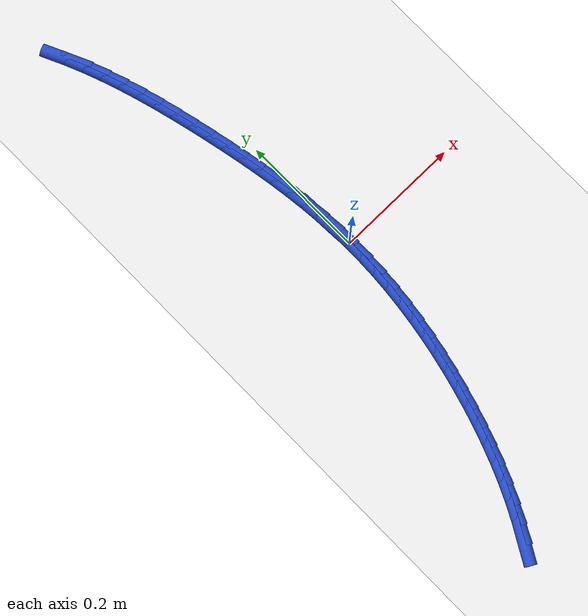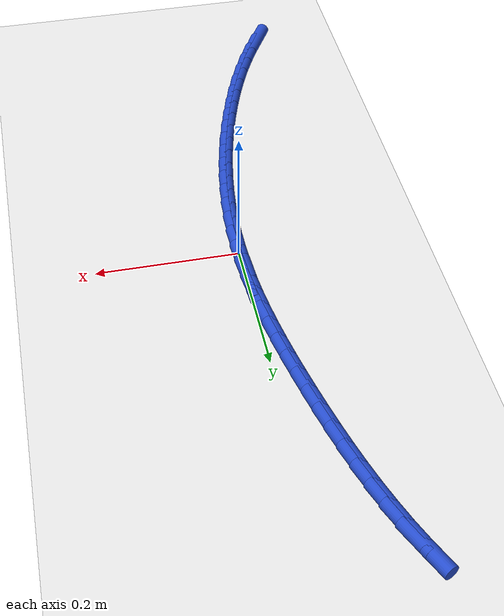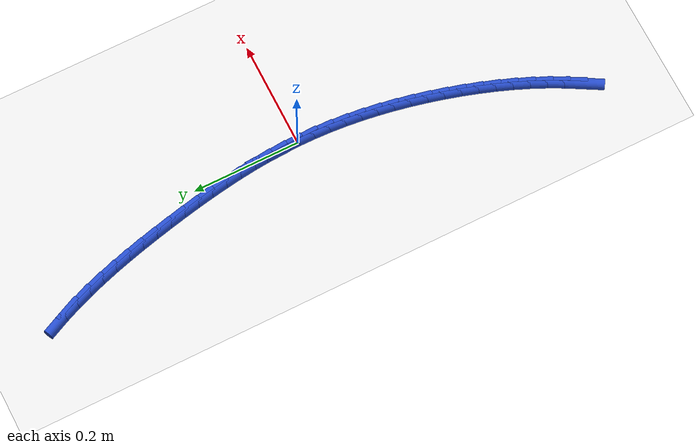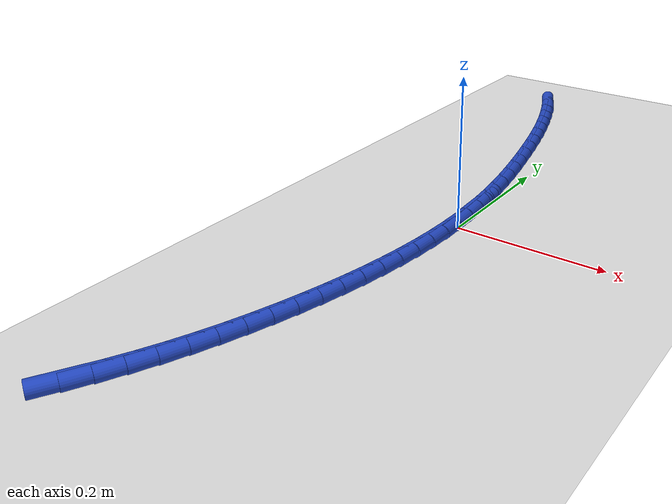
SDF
<sdf version="1.6">
 <world name="default">
  <model name="ground_plane">
   <static>1</static>
   <link name="link">
    <collision name="collision">
     <geometry><plane><normal>0 0 1</normal><size>100 100</size></plane></geometry>
     <surface><friction><ode><mu>100</mu><mu2>50</mu2></ode></friction></surface>
    </collision>
    <visual name="visual">
     <cast_shadows>0</cast_shadows>
     <geometry><plane><normal>0 0 1</normal><size>100 100</size></plane></geometry>
     <material>
      <script><uri>file://media/materials/scripts/gazebo.material</uri><name>Gazebo/WhiteGlow</name></script>
     </material>
    </visual>
   </link>
  </model>
  <model name="line">
   <link name="link_0">
    <pose>-6.071532165918825e-18 4.85722573273506e-17 0.01 0 1.57 -1.5422927367857937</pose>
    <collision name="collision">
     <geometry><cylinder><radius>0.01</radius><length>0.08</length></cylinder></geometry>
    </collision>
    <visual name="visual">
     <material>
      <script><name>Gazebo/Blue</name><uri>file://media/materials/scripts/gazebo.material</uri></script>
     </material>
     <geometry><cylinder><radius>0.01</radius><length>0.08</length></cylinder></geometry>
    </visual>
   </link>
   <link name="link_1">
    <pose>-0.0008500700730344115 0.029815186291741774 0.01 0 1.57 -1.5089899252679961</pose>
    <collision name="collision">
     <geometry><cylinder><radius>0.01</radius><length>0.08</length></cylinder></geometry>
    </collision>
    <visual name="visual">
     <material>
      <script><name>Gazebo/Blue</name><uri>file://media/materials/scripts/gazebo.material</uri></script>
     </material>
     <geometry><cylinder><radius>0.01</radius><length>0.08</length></cylinder></geometry>
    </visual>
   </link>
   <link name="link_2">
    <pose>-0.0026938253464960774 0.05960832900175632 0.01 0 1.57 -1.4784900606739158</pose>
    <collision name="collision">
     <geometry><cylinder><radius>0.01</radius><length>0.08</length></cylinder></geometry>
    </collision>
    <visual name="visual">
     <material>
      <script><name>Gazebo/Blue</name><uri>file://media/materials/scripts/gazebo.material</uri></script>
     </material>
     <geometry><cylinder><radius>0.01</radius><length>0.08</length></cylinder></geometry>
    </visual>
   </link>
   <link name="link_3">
    <pose>-0.0054497243864304315 0.08937951943180696 0.01 0 1.57 -1.4508179641924235</pose>
    <collision name="collision">
     <geometry><cylinder><radius>0.01</radius><length>0.08</length></cylinder></geometry>
    </collision>
    <visual name="visual">
     <material>
      <script><name>Gazebo/Blue</name><uri>file://media/materials/scripts/gazebo.material</uri></script>
     </material>
     <geometry><cylinder><radius>0.01</radius><length>0.08</length></cylinder></geometry>
    </visual>
   </link>
   <link name="link_4">
    <pose>-0.009036225758882886 0.11912884888365684 0.01 0 1.57 -1.425974173129406</pose>
    <collision name="collision">
     <geometry><cylinder><radius>0.01</radius><length>0.08</length></cylinder></geometry>
    </collision>
    <visual name="visual">
     <material>
      <script><name>Gazebo/Blue</name><uri>file://media/materials/scripts/gazebo.material</uri></script>
     </material>
     <geometry><cylinder><radius>0.01</radius><length>0.08</length></cylinder></geometry>
    </visual>
   </link>
   <link name="link_5">
    <pose>-0.013371788029898852 0.1488564086590691 0.01 0 1.57 -1.403941627276447</pose>
    <collision name="collision">
     <geometry><cylinder><radius>0.01</radius><length>0.08</length></cylinder></geometry>
    </collision>
    <visual name="visual">
     <material>
      <script><name>Gazebo/Blue</name><uri>file://media/materials/scripts/gazebo.material</uri></script>
     </material>
     <geometry><cylinder><radius>0.01</radius><length>0.08</length></cylinder></geometry>
    </visual>
   </link>
   <link name="link_6">
    <pose>-0.018374869765523758 0.17856229005980703 0.01 0 1.57 -1.3846916934895022</pose>
    <collision name="collision">
     <geometry><cylinder><radius>0.01</radius><length>0.08</length></cylinder></geometry>
    </collision>
    <visual name="visual">
     <material>
      <script><name>Gazebo/Blue</name><uri>file://media/materials/scripts/gazebo.material</uri></script>
     </material>
     <geometry><cylinder><radius>0.01</radius><length>0.08</length></cylinder></geometry>
    </visual>
   </link>
   <link name="link_7">
    <pose>-0.02396392953180301 0.2082465843876337 0.01 0 1.57 -1.3681893877690723</pose>
    <collision name="collision">
     <geometry><cylinder><radius>0.01</radius><length>0.08</length></cylinder></geometry>
    </collision>
    <visual name="visual">
     <material>
      <script><name>Gazebo/Blue</name><uri>file://media/materials/scripts/gazebo.material</uri></script>
     </material>
     <geometry><cylinder><radius>0.01</radius><length>0.08</length></cylinder></geometry>
    </visual>
   </link>
   <link name="link_8">
    <pose>-0.030057425894782025 0.23790938294431227 0.01 0 1.57 -1.354397757085434</pose>
    <collision name="collision">
     <geometry><cylinder><radius>0.01</radius><length>0.08</length></cylinder></geometry>
    </collision>
    <visual name="visual">
     <material>
      <script><name>Gazebo/Blue</name><uri>file://media/materials/scripts/gazebo.material</uri></script>
     </material>
     <geometry><cylinder><radius>0.01</radius><length>0.08</length></cylinder></geometry>
    </visual>
   </link>
   <link name="link_9">
    <pose>-0.036573817420506236 0.2675507770316061 0.01 0 1.57 -1.3425047791238347</pose>
    <collision name="collision">
     <geometry><cylinder><radius>0.01</radius><length>0.08</length></cylinder></geometry>
    </collision>
    <visual name="visual">
     <material>
      <script><name>Gazebo/Blue</name><uri>file://media/materials/scripts/gazebo.material</uri></script>
     </material>
     <geometry><cylinder><radius>0.01</radius><length>0.08</length></cylinder></geometry>
    </visual>
   </link>
   <link name="link_10">
    <pose>-0.04345385833874382 0.29716247840001847 0.01 0 1.57 -1.3285737604182255</pose>
    <collision name="collision">
     <geometry><cylinder><radius>0.01</radius><length>0.08</length></cylinder></geometry>
    </collision>
    <visual name="visual">
     <material>
      <script><name>Gazebo/Blue</name><uri>file://media/materials/scripts/gazebo.material</uri></script>
     </material>
     <geometry><cylinder><radius>0.01</radius><length>0.08</length></cylinder></geometry>
    </visual>
   </link>
   <link name="link_11">
    <pose>-0.050750341684509856 0.32669409039173974 0.01 0 1.57 -1.3113362095584067</pose>
    <collision name="collision">
     <geometry><cylinder><radius>0.01</radius><length>0.08</length></cylinder></geometry>
    </collision>
    <visual name="visual">
     <material>
      <script><name>Gazebo/Blue</name><uri>file://media/materials/scripts/gazebo.material</uri></script>
     </material>
     <geometry><cylinder><radius>0.01</radius><length>0.08</length></cylinder></geometry>
    </visual>
   </link>
   <link name="link_12">
    <pose>-0.058551177147625755 0.35608201818573537 0.01 0 1.57 -1.2907302031593344</pose>
    <collision name="collision">
     <geometry><cylinder><radius>0.01</radius><length>0.08</length></cylinder></geometry>
    </collision>
    <visual name="visual">
     <material>
      <script><name>Gazebo/Blue</name><uri>file://media/materials/scripts/gazebo.material</uri></script>
     </material>
     <geometry><cylinder><radius>0.01</radius><length>0.08</length></cylinder></geometry>
    </visual>
   </link>
   <link name="link_13">
    <pose>-0.06694428671944992 0.38526266233758893 0.01 0 1.57 -1.2666827574717787</pose>
    <collision name="collision">
     <geometry><cylinder><radius>0.01</radius><length>0.08</length></cylinder></geometry>
    </collision>
    <visual name="visual">
     <material>
      <script><name>Gazebo/Blue</name><uri>file://media/materials/scripts/gazebo.material</uri></script>
     </material>
     <geometry><cylinder><radius>0.01</radius><length>0.08</length></cylinder></geometry>
    </visual>
   </link>
   <link name="link_14">
    <pose>-0.0760175923913409 0.4141724234028846 0.01 0 1.57 -1.2391159954920428</pose>
    <collision name="collision">
     <geometry><cylinder><radius>0.01</radius><length>0.08</length></cylinder></geometry>
    </collision>
    <visual name="visual">
     <material>
      <script><name>Gazebo/Blue</name><uri>file://media/materials/scripts/gazebo.material</uri></script>
     </material>
     <geometry><cylinder><radius>0.01</radius><length>0.08</length></cylinder></geometry>
    </visual>
   </link>
   <link name="link_15">
    <pose>-0.0858590161546571 0.4427477019372059 0.01 0 1.57 -1.2079554633256253</pose>
    <collision name="collision">
     <geometry><cylinder><radius>0.01</radius><length>0.08</length></cylinder></geometry>
    </collision>
    <visual name="visual">
     <material>
      <script><name>Gazebo/Blue</name><uri>file://media/materials/scripts/gazebo.material</uri></script>
     </material>
     <geometry><cylinder><radius>0.01</radius><length>0.08</length></cylinder></geometry>
    </visual>
   </link>
   <link name="link_16">
    <pose>-0.09655648000075702 0.47092489849613706 0.01 0 1.57 -1.1731404388087883</pose>
    <collision name="collision">
     <geometry><cylinder><radius>0.01</radius><length>0.08</length></cylinder></geometry>
    </collision>
    <visual name="visual">
     <material>
      <script><name>Gazebo/Blue</name><uri>file://media/materials/scripts/gazebo.material</uri></script>
     </material>
     <geometry><cylinder><radius>0.01</radius><length>0.08</length></cylinder></geometry>
    </visual>
   </link>
   <link name="link_17">
    <pose>-0.10819790592099916 0.49864041363526146 0.01 0 1.57 -1.1346363552337206</pose>
    <collision name="collision">
     <geometry><cylinder><radius>0.01</radius><length>0.08</length></cylinder></geometry>
    </collision>
    <visual name="visual">
     <material>
      <script><name>Gazebo/Blue</name><uri>file://media/materials/scripts/gazebo.material</uri></script>
     </material>
     <geometry><cylinder><radius>0.01</radius><length>0.08</length></cylinder></geometry>
    </visual>
   </link>
   <link name="link_213">
    <pose>-0.12747563588377403 -0.4910410517550294 0.01 0 1.57 1.0550272581237121</pose>
    <collision name="collision">
     <geometry><cylinder><radius>0.01</radius><length>0.08</length></cylinder></geometry>
    </collision>
    <visual name="visual">
     <material>
      <script><name>Gazebo/Blue</name><uri>file://media/materials/scripts/gazebo.material</uri></script>
     </material>
     <geometry><cylinder><radius>0.01</radius><length>0.08</length></cylinder></geometry>
    </visual>
   </link>
   <link name="link_214">
    <pose>-0.11285773469610245 -0.46525798505636967 0.01 0 1.57 1.0974276863614618</pose>
    <collision name="collision">
     <geometry><cylinder><radius>0.01</radius><length>0.08</length></cylinder></geometry>
    </collision>
    <visual name="visual">
     <material>
      <script><name>Gazebo/Blue</name><uri>file://media/materials/scripts/gazebo.material</uri></script>
     </material>
     <geometry><cylinder><radius>0.01</radius><length>0.08</length></cylinder></geometry>
    </visual>
   </link>
   <link name="link_215">
    <pose>-0.09923150010783145 -0.43865521022048365 0.01 0 1.57 1.1366426340865765</pose>
    <collision name="collision">
     <geometry><cylinder><radius>0.01</radius><length>0.08</length></cylinder></geometry>
    </collision>
    <visual name="visual">
     <material>
      <script><name>Gazebo/Blue</name><uri>file://media/materials/scripts/gazebo.material</uri></script>
     </material>
     <geometry><cylinder><radius>0.01</radius><length>0.08</length></cylinder></geometry>
    </visual>
   </link>
   <link name="link_216">
    <pose>-0.08656438027954007 -0.4113352463135019 0.01 0 1.57 1.1729245956779335</pose>
    <collision name="collision">
     <geometry><cylinder><radius>0.01</radius><length>0.08</length></cylinder></geometry>
    </collision>
    <visual name="visual">
     <material>
      <script><name>Gazebo/Blue</name><uri>file://media/materials/scripts/gazebo.material</uri></script>
     </material>
     <geometry><cylinder><radius>0.01</radius><length>0.08</length></cylinder></geometry>
    </visual>
   </link>
   <link name="link_217">
    <pose>-0.0748238233718063 -0.3834006124015533 0.01 0 1.57 1.2065203855503701</pose>
    <collision name="collision">
     <geometry><cylinder><radius>0.01</radius><length>0.08</length></cylinder></geometry>
    </collision>
    <visual name="visual">
     <material>
      <script><name>Gazebo/Blue</name><uri>file://media/materials/scripts/gazebo.material</uri></script>
     </material>
     <geometry><cylinder><radius>0.01</radius><length>0.08</length></cylinder></geometry>
    </visual>
   </link>
   <link name="link_218">
    <pose>-0.06397727754520852 -0.3549538275507676 0.01 0 1.57 1.2376656973851219</pose>
    <collision name="collision">
     <geometry><cylinder><radius>0.01</radius><length>0.08</length></cylinder></geometry>
    </collision>
    <visual name="visual">
     <material>
      <script><name>Gazebo/Blue</name><uri>file://media/materials/scripts/gazebo.material</uri></script>
     </material>
     <geometry><cylinder><radius>0.01</radius><length>0.08</length></cylinder></geometry>
    </visual>
   </link>
   <link name="link_219">
    <pose>-0.053992190960324836 -0.3260974108272733 0.01 0 1.57 1.2665819846330562</pose>
    <collision name="collision">
     <geometry><cylinder><radius>0.01</radius><length>0.08</length></cylinder></geometry>
    </collision>
    <visual name="visual">
     <material>
      <script><name>Gazebo/Blue</name><uri>file://media/materials/scripts/gazebo.material</uri></script>
     </material>
     <geometry><cylinder><radius>0.01</radius><length>0.08</length></cylinder></geometry>
    </visual>
   </link>
   <link name="link_220">
    <pose>-0.04483601177773416 -0.2969338812972016 0.01 0 1.57 1.2934752153636073</pose>
    <collision name="collision">
     <geometry><cylinder><radius>0.01</radius><length>0.08</length></cylinder></geometry>
    </collision>
    <visual name="visual">
     <material>
      <script><name>Gazebo/Blue</name><uri>file://media/materials/scripts/gazebo.material</uri></script>
     </material>
     <geometry><cylinder><radius>0.01</radius><length>0.08</length></cylinder></geometry>
    </visual>
   </link>
   <link name="link_221">
    <pose>-0.036476192992110815 -0.26756575164033186 0.01 0 1.57 1.319123469320976</pose>
    <collision name="collision">
     <geometry><cylinder><radius>0.01</radius><length>0.08</length></cylinder></geometry>
    </collision>
    <visual name="visual">
     <material>
      <script><name>Gazebo/Blue</name><uri>file://media/materials/scripts/gazebo.material</uri></script>
     </material>
     <geometry><cylinder><radius>0.01</radius><length>0.08</length></cylinder></geometry>
    </visual>
   </link>
   <link name="link_222">
    <pose>-0.028893987279285823 -0.23807730370656413 0.01 0 1.57 1.3455209837935682</pose>
    <collision name="collision">
     <geometry><cylinder><radius>0.01</radius><length>0.08</length></cylinder></geometry>
    </collision>
    <visual name="visual">
     <material>
      <script><name>Gazebo/Blue</name><uri>file://media/materials/scripts/gazebo.material</uri></script>
     </material>
     <geometry><cylinder><radius>0.01</radius><length>0.08</length></cylinder></geometry>
    </visual>
   </link>
   <link name="link_223">
    <pose>-0.022114674851256944 -0.20849465434091052 0.01 0 1.57 1.3730793578525184</pose>
    <collision name="collision">
     <geometry><cylinder><radius>0.01</radius><length>0.08</length></cylinder></geometry>
    </collision>
    <visual name="visual">
     <material>
      <script><name>Gazebo/Blue</name><uri>file://media/materials/scripts/gazebo.material</uri></script>
     </material>
     <geometry><cylinder><radius>0.01</radius><length>0.08</length></cylinder></geometry>
    </visual>
   </link>
   <link name="link_224">
    <pose>-0.016172297376722707 -0.17883234558279454 0.01 0 1.57 1.4018262852361962</pose>
    <collision name="collision">
     <geometry><cylinder><radius>0.01</radius><length>0.08</length></cylinder></geometry>
    </collision>
    <visual name="visual">
     <material>
      <script><name>Gazebo/Blue</name><uri>file://media/materials/scripts/gazebo.material</uri></script>
     </material>
     <geometry><cylinder><radius>0.01</radius><length>0.08</length></cylinder></geometry>
    </visual>
   </link>
   <link name="link_225">
    <pose>-0.011100896524381135 -0.1491049194716374 0.01 0 1.57 1.431783966662483</pose>
    <collision name="collision">
     <geometry><cylinder><radius>0.01</radius><length>0.08</length></cylinder></geometry>
    </collision>
    <visual name="visual">
     <material>
      <script><name>Gazebo/Blue</name><uri>file://media/materials/scripts/gazebo.material</uri></script>
     </material>
     <geometry><cylinder><radius>0.01</radius><length>0.08</length></cylinder></geometry>
    </visual>
   </link>
   <link name="link_226">
    <pose>-0.006934513962930416 -0.119326918046861 0.01 0 1.57 1.4629677521012943</pose>
    <collision name="collision">
     <geometry><cylinder><radius>0.01</radius><length>0.08</length></cylinder></geometry>
    </collision>
    <visual name="visual">
     <material>
      <script><name>Gazebo/Blue</name><uri>file://media/materials/scripts/gazebo.material</uri></script>
     </material>
     <geometry><cylinder><radius>0.01</radius><length>0.08</length></cylinder></geometry>
    </visual>
   </link>
   <link name="link_227">
    <pose>-0.0037071913610687455 -0.08951288334788718 0.01 0 1.57 1.4953846793268397</pose>
    <collision name="collision">
     <geometry><cylinder><radius>0.01</radius><length>0.08</length></cylinder></geometry>
    </collision>
    <visual name="visual">
     <material>
      <script><name>Gazebo/Blue</name><uri>file://media/materials/scripts/gazebo.material</uri></script>
     </material>
     <geometry><cylinder><radius>0.01</radius><length>0.08</length></cylinder></geometry>
    </visual>
   </link>
   <link name="link_228">
    <pose>-0.001452970387494285 -0.05967735741413721 0.01 0 1.57 1.529031945339067</pose>
    <collision name="collision">
     <geometry><cylinder><radius>0.01</radius><length>0.08</length></cylinder></geometry>
    </collision>
    <visual name="visual">
     <material>
      <script><name>Gazebo/Blue</name><uri>file://media/materials/scripts/gazebo.material</uri></script>
     </material>
     <geometry><cylinder><radius>0.01</radius><length>0.08</length></cylinder></geometry>
    </visual>
   </link>
   <link name="link_229">
    <pose>-0.00020589271090533205 -0.02983488228503446 0.01 0 1.57 1.5638953630003114</pose>
    <collision name="collision">
     <geometry><cylinder><radius>0.01</radius><length>0.08</length></cylinder></geometry>
    </collision>
    <visual name="visual">
     <material>
      <script><name>Gazebo/Blue</name><uri>file://media/materials/scripts/gazebo.material</uri></script>
     </material>
     <geometry><cylinder><radius>0.01</radius><length>0.08</length></cylinder></geometry>
    </visual>
   </link>
   <link name="link_230">
    <pose>-1.734723475976807e-17 -1.0408340855860843e-16 0.01 0 1.57 -1.5416447816236833</pose>
    <collision name="collision">
     <geometry><cylinder><radius>0.01</radius><length>0.08</length></cylinder></geometry>
    </collision>
    <visual name="visual">
     <material>
      <script><name>Gazebo/Blue</name><uri>file://media/materials/scripts/gazebo.material</uri></script>
     </material>
     <geometry><cylinder><radius>0.01</radius><length>0.08</length></cylinder></geometry>
    </visual>
   </link>
   <link name="link_231">
    <pose>-0.0008693339234765425 0.02981274740154393 0.01 0 1.57 -1.5044444644600274</pose>
    <collision name="collision">
     <geometry><cylinder><radius>0.01</radius><length>0.08</length></cylinder></geometry>
    </collision>
    <visual name="visual">
     <material>
      <script><name>Gazebo/Blue</name><uri>file://media/materials/scripts/gazebo.material</uri></script>
     </material>
     <geometry><cylinder><radius>0.01</radius><length>0.08</length></cylinder></geometry>
    </visual>
   </link>
   <link name="link_232">
    <pose>-0.0028479361500330976 0.05958881788017571 0.01 0 1.57 -1.5230395359154572</pose>
    <collision name="collision">
     <geometry><cylinder><radius>0.01</radius><length>0.08</length></cylinder></geometry>
    </collision>
    <visual name="visual">
     <material>
      <script><name>Gazebo/Blue</name><uri>file://media/materials/scripts/gazebo.material</uri></script>
     </material>
     <geometry><cylinder><radius>0.01</radius><length>0.08</length></cylinder></geometry>
    </visual>
   </link>
  </model>
 </world>
</sdf>
